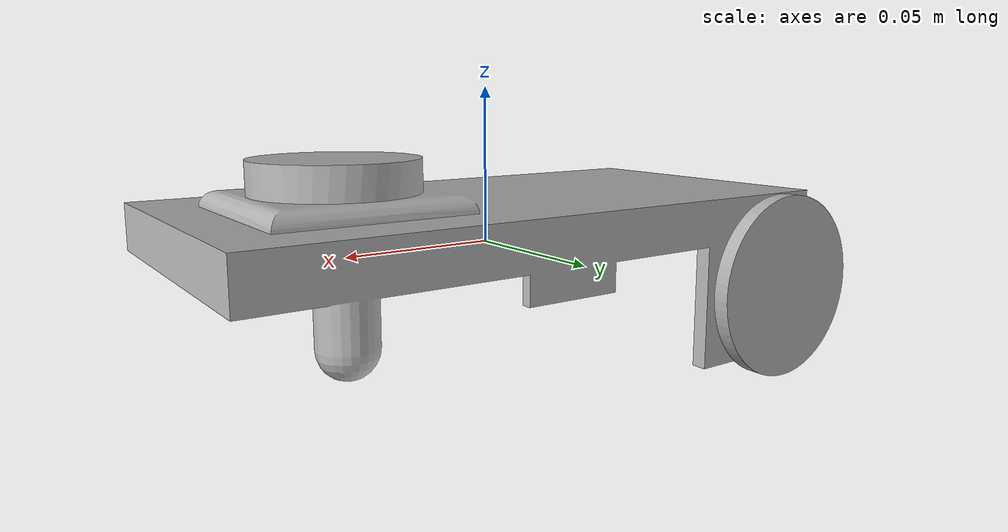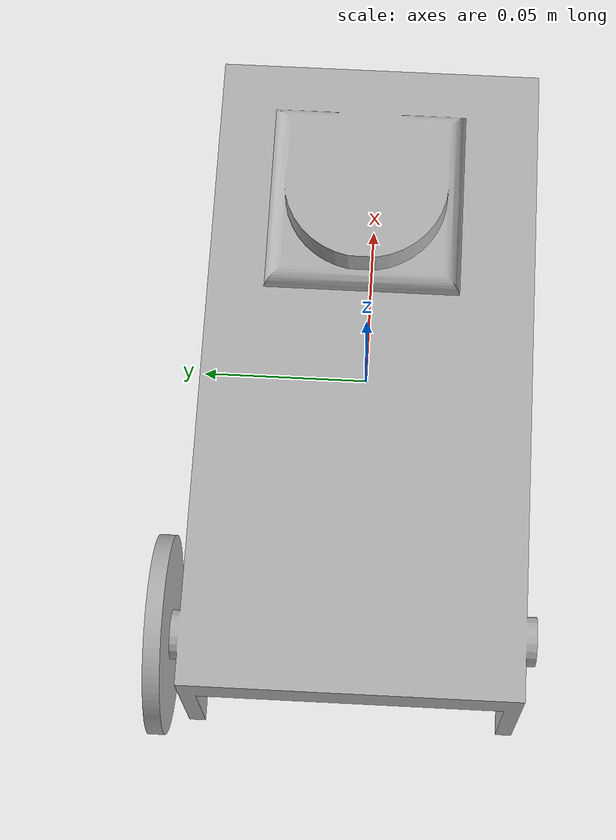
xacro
<?xml version="1.0" ?>
<robot name="day" xmlns:xacro="http://www.ros.org/wiki/xacro">

<xacro:include filename="$(find day_description)/urdf/materials.xacro" />
<xacro:include filename="$(find day_description)/urdf/day.trans" />
<xacro:include filename="$(find day_description)/urdf/day.gazebo" />
<link name="base_link">
  <inertial>
    <origin xyz="0.20755223500193812 0.08874499095207393 -0.28694965036870895" rpy="0 0 0"/>
    <mass value="2.8894718370283434"/>
    <inertia ixx="0.002711" iyy="0.010219" izz="0.012321" ixy="-3.5e-05" iyz="-1e-05" ixz="-0.000456"/>
  </inertial>
  <visual>
    <origin xyz="0 0 0" rpy="0 0 0"/>
    <geometry>
      <mesh filename="package://day_description/meshes/base_link.stl" scale="0.001 0.001 0.001"/>
    </geometry>
    <material name="silver"/>
  </visual>
  <collision>
    <origin xyz="0 0 0" rpy="0 0 0"/>
    <geometry>
      <mesh filename="package://day_description/meshes/base_link.stl" scale="0.001 0.001 0.001"/>
    </geometry>
  </collision>
</link>

<link name="left_wheel_1">
  <inertial>
    <origin xyz="-2.5833728548030344e-07 0.0025002210465544794 -3.53264753505389e-07" rpy="0 0 0"/>
    <mass value="0.1109767604880594"/>
    <inertia ixx="2.5e-05" iyy="5e-05" izz="2.5e-05" ixy="-0.0" iyz="-0.0" ixz="-0.0"/>
  </inertial>
  <visual>
    <origin xyz="-0.126106 -0.143452 0.307951" rpy="0 0 0"/>
    <geometry>
      <mesh filename="package://day_description/meshes/left_wheel_1.stl" scale="0.001 0.001 0.001"/>
    </geometry>
    <material name="silver"/>
  </visual>
  <collision>
    <origin xyz="-0.126106 -0.143452 0.307951" rpy="0 0 0"/>
    <geometry>
      <mesh filename="package://day_description/meshes/left_wheel_1.stl" scale="0.001 0.001 0.001"/>
    </geometry>
  </collision>
</link>

<link name="right_wheel_1">
  <inertial>
    <origin xyz="-5.190943597188635e-08 -0.002499778953445317 3.485909061407e-07" rpy="0 0 0"/>
    <mass value="0.11097676048805943"/>
    <inertia ixx="2.5e-05" iyy="5e-05" izz="2.5e-05" ixy="-0.0" iyz="-0.0" ixz="-0.0"/>
  </inertial>
  <visual>
    <origin xyz="-0.129269 -0.033452 0.3081" rpy="0 0 0"/>
    <geometry>
      <mesh filename="package://day_description/meshes/right_wheel_1.stl" scale="0.001 0.001 0.001"/>
    </geometry>
    <material name="silver"/>
  </visual>
  <collision>
    <origin xyz="-0.129269 -0.033452 0.3081" rpy="0 0 0"/>
    <geometry>
      <mesh filename="package://day_description/meshes/right_wheel_1.stl" scale="0.001 0.001 0.001"/>
    </geometry>
  </collision>
</link>

<joint name="Rev1" type="continuous">
  <origin xyz="0.126106 0.143452 -0.307951" rpy="0 0 0"/>
  <parent link="base_link"/>
  <child link="left_wheel_1"/>
  <axis xyz="0.0 1.0 0.0"/>
</joint>

<joint name="Rev2" type="continuous">
  <origin xyz="0.129269 0.033452 -0.3081" rpy="0 0 0"/>
  <parent link="base_link"/>
  <child link="right_wheel_1"/>
  <axis xyz="0.0 1.0 0.0"/>
</joint>

</robot>

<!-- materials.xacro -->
<robot name="day" xmlns:xacro="http://www.ros.org/wiki/xacro" >

<material name="silver">
  <color rgba="0.700 0.700 0.700 1.000"/>
</material>

</robot>
